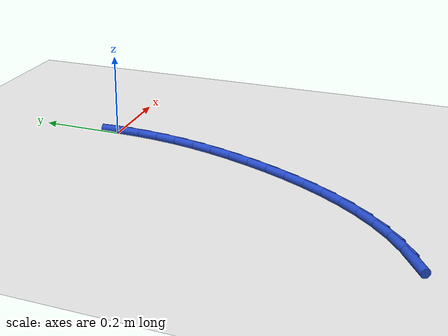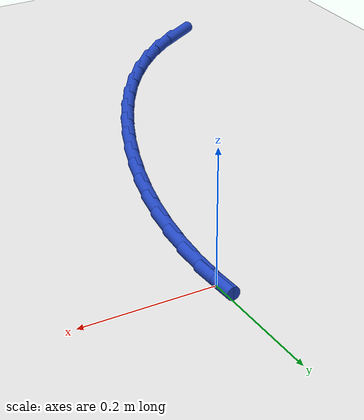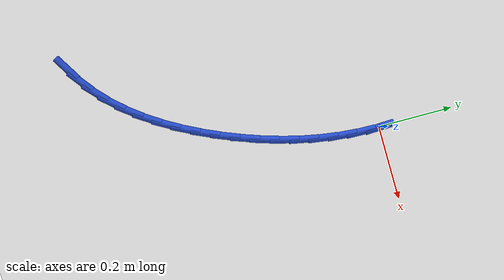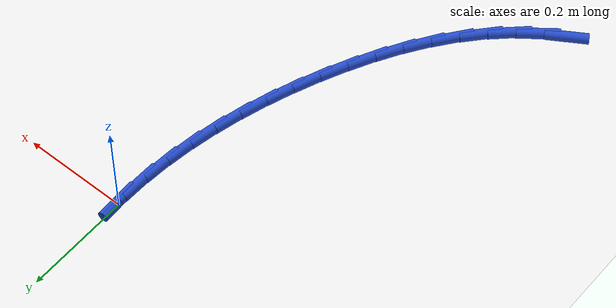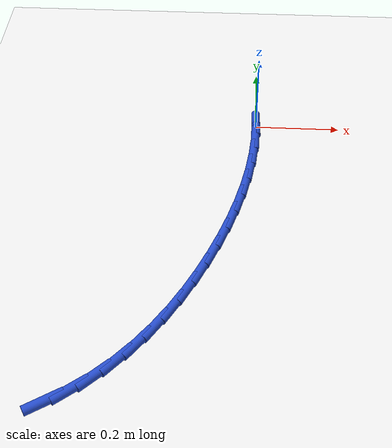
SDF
<sdf version="1.6">
 <world name="default">
  <model name="ground_plane">
   <static>1</static>
   <link name="link">
    <collision name="collision">
     <geometry><plane><normal>0 0 1</normal><size>100 100</size></plane></geometry>
     <surface><friction><ode><mu>100</mu><mu2>50</mu2></ode></friction></surface>
    </collision>
    <visual name="visual">
     <cast_shadows>0</cast_shadows>
     <geometry><plane><normal>0 0 1</normal><size>100 100</size></plane></geometry>
     <material>
      <script><uri>file://media/materials/scripts/gazebo.material</uri><name>Gazebo/WhiteGlow</name></script>
     </material>
    </visual>
   </link>
  </model>
  <model name="line">
   <link name="link_0">
    <pose>2.0816681711721685e-17 5.551115123125783e-17 0.01 0 1.57 -1.5330412168781087</pose>
    <collision name="collision">
     <geometry><cylinder><radius>0.01</radius><length>0.08</length></cylinder></geometry>
    </collision>
    <visual name="visual">
     <material>
      <script><name>Gazebo/Blue</name><uri>file://media/materials/scripts/gazebo.material</uri></script>
     </material>
     <geometry><cylinder><radius>0.01</radius><length>0.08</length></cylinder></geometry>
    </visual>
   </link>
   <link name="link_133">
    <pose>-0.3730052904112127 -0.769207962314078 0.01 0 1.57 0.555184645079798</pose>
    <collision name="collision">
     <geometry><cylinder><radius>0.01</radius><length>0.08</length></cylinder></geometry>
    </collision>
    <visual name="visual">
     <material>
      <script><name>Gazebo/Blue</name><uri>file://media/materials/scripts/gazebo.material</uri></script>
     </material>
     <geometry><cylinder><radius>0.01</radius><length>0.08</length></cylinder></geometry>
    </visual>
   </link>
   <link name="link_134">
    <pose>-0.3298876436620281 -0.7424637431173808 0.01 0 1.57 0.6613624168469758</pose>
    <collision name="collision">
     <geometry><cylinder><radius>0.01</radius><length>0.08</length></cylinder></geometry>
    </collision>
    <visual name="visual">
     <material>
      <script><name>Gazebo/Blue</name><uri>file://media/materials/scripts/gazebo.material</uri></script>
     </material>
     <geometry><cylinder><radius>0.01</radius><length>0.08</length></cylinder></geometry>
    </visual>
   </link>
   <link name="link_135">
    <pose>-0.2898002426090023 -0.7112641085923502 0.01 0 1.57 0.7611805351720156</pose>
    <collision name="collision">
     <geometry><cylinder><radius>0.01</radius><length>0.08</length></cylinder></geometry>
    </collision>
    <visual name="visual">
     <material>
      <script><name>Gazebo/Blue</name><uri>file://media/materials/scripts/gazebo.material</uri></script>
     </material>
     <geometry><cylinder><radius>0.01</radius><length>0.08</length></cylinder></geometry>
    </visual>
   </link>
   <link name="link_136">
    <pose>-0.2527134432565227 -0.6759314789962514 0.01 0 1.57 0.8500508673787944</pose>
    <collision name="collision">
     <geometry><cylinder><radius>0.01</radius><length>0.08</length></cylinder></geometry>
    </collision>
    <visual name="visual">
     <material>
      <script><name>Gazebo/Blue</name><uri>file://media/materials/scripts/gazebo.material</uri></script>
     </material>
     <geometry><cylinder><radius>0.01</radius><length>0.08</length></cylinder></geometry>
    </visual>
   </link>
   <link name="link_137">
    <pose>-0.21850235565195028 -0.6369838833708587 0.01 0 1.57 0.9284093849538962</pose>
    <collision name="collision">
     <geometry><cylinder><radius>0.01</radius><length>0.08</length></cylinder></geometry>
    </collision>
    <visual name="visual">
     <material>
      <script><name>Gazebo/Blue</name><uri>file://media/materials/scripts/gazebo.material</uri></script>
     </material>
     <geometry><cylinder><radius>0.01</radius><length>0.08</length></cylinder></geometry>
    </visual>
   </link>
   <link name="link_138">
    <pose>-0.18704208984264586 -0.5949393507579467 0.01 0 1.57 0.9971181777519972</pose>
    <collision name="collision">
     <geometry><cylinder><radius>0.01</radius><length>0.08</length></cylinder></geometry>
    </collision>
    <visual name="visual">
     <material>
      <script><name>Gazebo/Blue</name><uri>file://media/materials/scripts/gazebo.material</uri></script>
     </material>
     <geometry><cylinder><radius>0.01</radius><length>0.08</length></cylinder></geometry>
    </visual>
   </link>
   <link name="link_139">
    <pose>-0.15820775587596891 -0.5503159101992885 0.01 0 1.57 1.0572139206947062</pose>
    <collision name="collision">
     <geometry><cylinder><radius>0.01</radius><length>0.08</length></cylinder></geometry>
    </collision>
    <visual name="visual">
     <material>
      <script><name>Gazebo/Blue</name><uri>file://media/materials/scripts/gazebo.material</uri></script>
     </material>
     <geometry><cylinder><radius>0.01</radius><length>0.08</length></cylinder></geometry>
    </visual>
   </link>
   <link name="link_140">
    <pose>-0.1318744637992807 -0.5036315907366593 0.01 0 1.57 1.1097472104383785</pose>
    <collision name="collision">
     <geometry><cylinder><radius>0.01</radius><length>0.08</length></cylinder></geometry>
    </collision>
    <visual name="visual">
     <material>
      <script><name>Gazebo/Blue</name><uri>file://media/materials/scripts/gazebo.material</uri></script>
     </material>
     <geometry><cylinder><radius>0.01</radius><length>0.08</length></cylinder></geometry>
    </visual>
   </link>
   <link name="link_141">
    <pose>-0.10791732365994067 -0.45540442141183185 0.01 0 1.57 1.1556941999559784</pose>
    <collision name="collision">
     <geometry><cylinder><radius>0.01</radius><length>0.08</length></cylinder></geometry>
    </collision>
    <visual name="visual">
     <material>
      <script><name>Gazebo/Blue</name><uri>file://media/materials/scripts/gazebo.material</uri></script>
     </material>
     <geometry><cylinder><radius>0.01</radius><length>0.08</length></cylinder></geometry>
    </visual>
   </link>
   <link name="link_142">
    <pose>-0.08621144557328017 -0.40615243114764277 0.01 0 1.57 1.1971797881406756</pose>
    <collision name="collision">
     <geometry><cylinder><radius>0.01</radius><length>0.08</length></cylinder></geometry>
    </collision>
    <visual name="visual">
     <material>
      <script><name>Gazebo/Blue</name><uri>file://media/materials/scripts/gazebo.material</uri></script>
     </material>
     <geometry><cylinder><radius>0.01</radius><length>0.08</length></cylinder></geometry>
    </visual>
   </link>
   <link name="link_143">
    <pose>-0.06667499383821399 -0.3563183104985979 0.01 0 1.57 1.2396251892595933</pose>
    <collision name="collision">
     <geometry><cylinder><radius>0.01</radius><length>0.08</length></cylinder></geometry>
    </collision>
    <visual name="visual">
     <material>
      <script><name>Gazebo/Blue</name><uri>file://media/materials/scripts/gazebo.material</uri></script>
     </material>
     <geometry><cylinder><radius>0.01</radius><length>0.08</length></cylinder></geometry>
    </visual>
   </link>
   <link name="link_144">
    <pose>-0.049392370046293134 -0.306053859672652 0.01 0 1.57 1.2844166936232995</pose>
    <collision name="collision">
     <geometry><cylinder><radius>0.01</radius><length>0.08</length></cylinder></geometry>
    </collision>
    <visual name="visual">
     <material>
      <script><name>Gazebo/Blue</name><uri>file://media/materials/scripts/gazebo.material</uri></script>
     </material>
     <geometry><cylinder><radius>0.01</radius><length>0.08</length></cylinder></geometry>
    </visual>
   </link>
   <link name="link_145">
    <pose>-0.034488091802860554 -0.2554406818661981 0.01 0 1.57 1.331720826651178</pose>
    <collision name="collision">
     <geometry><cylinder><radius>0.01</radius><length>0.08</length></cylinder></geometry>
    </collision>
    <visual name="visual">
     <material>
      <script><name>Gazebo/Blue</name><uri>file://media/materials/scripts/gazebo.material</uri></script>
     </material>
     <geometry><cylinder><radius>0.01</radius><length>0.08</length></cylinder></geometry>
    </visual>
   </link>
   <link name="link_146">
    <pose>-0.022086676713258122 -0.20456038027562623 0.01 0 1.57 1.3816828275834945</pose>
    <collision name="collision">
     <geometry><cylinder><radius>0.01</radius><length>0.08</length></cylinder></geometry>
    </collision>
    <visual name="visual">
     <material>
      <script><name>Gazebo/Blue</name><uri>file://media/materials/scripts/gazebo.material</uri></script>
     </material>
     <geometry><cylinder><radius>0.01</radius><length>0.08</length></cylinder></geometry>
    </visual>
   </link>
   <link name="link_147">
    <pose>-0.012312642382828476 -0.15349455809732876 0.01 0 1.57 1.4344160040494884</pose>
    <collision name="collision">
     <geometry><cylinder><radius>0.01</radius><length>0.08</length></cylinder></geometry>
    </collision>
    <visual name="visual">
     <material>
      <script><name>Gazebo/Blue</name><uri>file://media/materials/scripts/gazebo.material</uri></script>
     </material>
     <geometry><cylinder><radius>0.01</radius><length>0.08</length></cylinder></geometry>
    </visual>
   </link>
   <link name="link_148">
    <pose>-0.005290506416914073 -0.10232481852769804 0.01 0 1.57 1.4899890108879796</pose>
    <collision name="collision">
     <geometry><cylinder><radius>0.01</radius><length>0.08</length></cylinder></geometry>
    </collision>
    <visual name="visual">
     <material>
      <script><name>Gazebo/Blue</name><uri>file://media/materials/scripts/gazebo.material</uri></script>
     </material>
     <geometry><cylinder><radius>0.01</radius><length>0.08</length></cylinder></geometry>
    </visual>
   </link>
   <link name="link_149">
    <pose>-0.0011447864208570715 -0.05113276476312394 0.01 0 1.57 1.5484115562726357</pose>
    <collision name="collision">
     <geometry><cylinder><radius>0.01</radius><length>0.08</length></cylinder></geometry>
    </collision>
    <visual name="visual">
     <material>
      <script><name>Gazebo/Blue</name><uri>file://media/materials/scripts/gazebo.material</uri></script>
     </material>
     <geometry><cylinder><radius>0.01</radius><length>0.08</length></cylinder></geometry>
    </visual>
   </link>
   <link name="link_150">
    <pose>4.85722573273506e-17 2.7755575615628914e-16 0.01 0 1.57 -1.531973089968174</pose>
    <collision name="collision">
     <geometry><cylinder><radius>0.01</radius><length>0.08</length></cylinder></geometry>
    </collision>
    <visual name="visual">
     <material>
      <script><name>Gazebo/Blue</name><uri>file://media/materials/scripts/gazebo.material</uri></script>
     </material>
     <geometry><cylinder><radius>0.01</radius><length>0.08</length></cylinder></geometry>
    </visual>
   </link>
  </model>
 </world>
</sdf>
